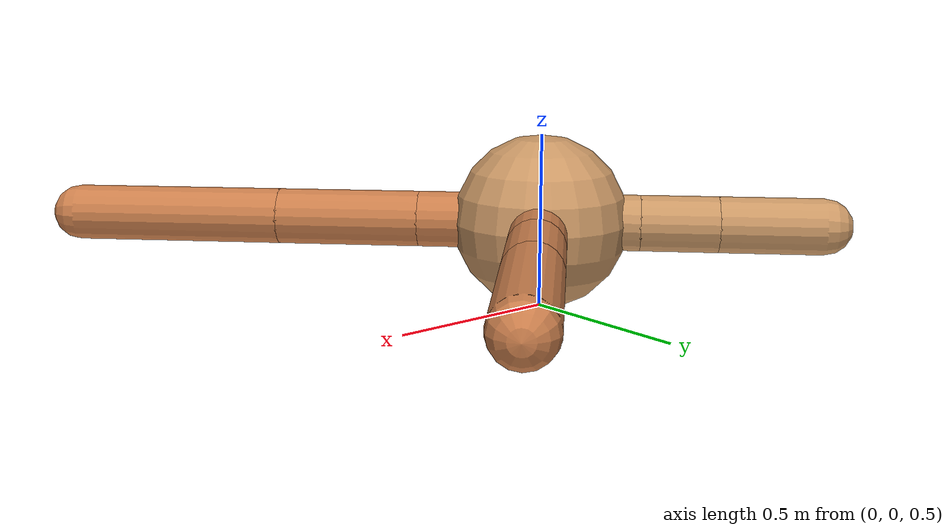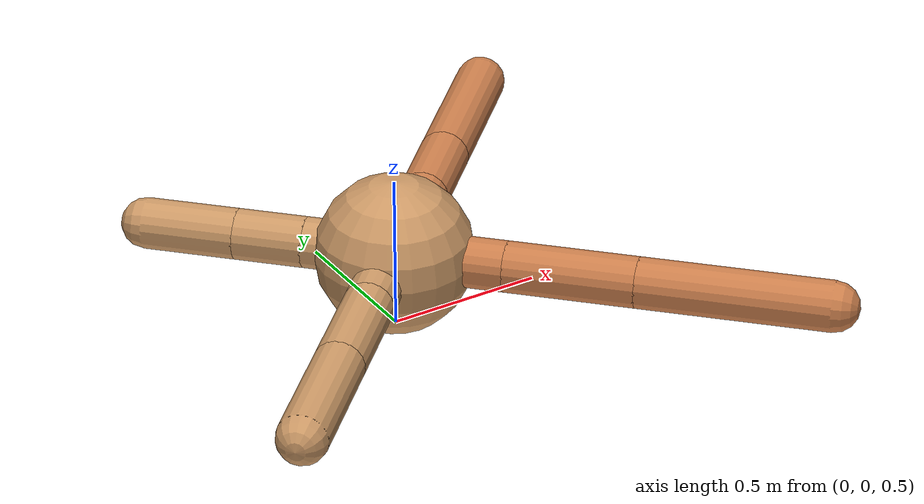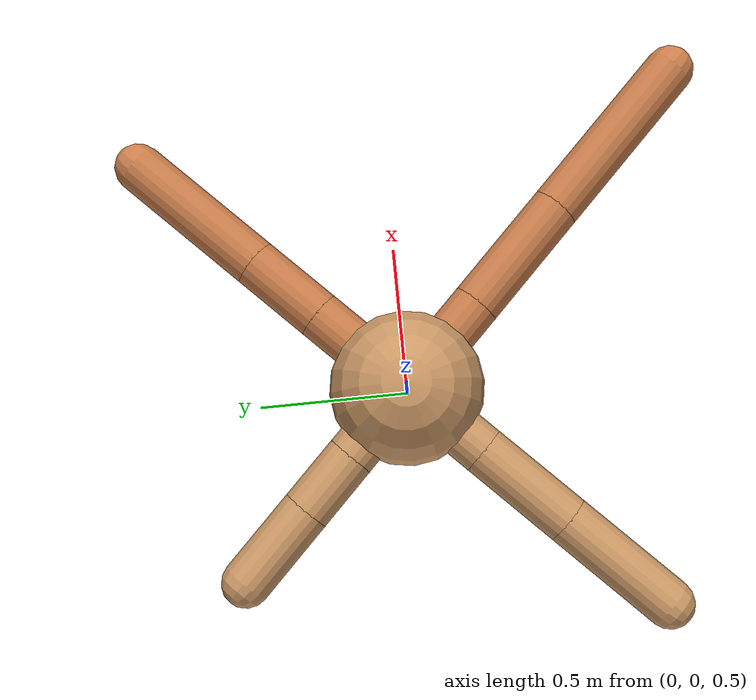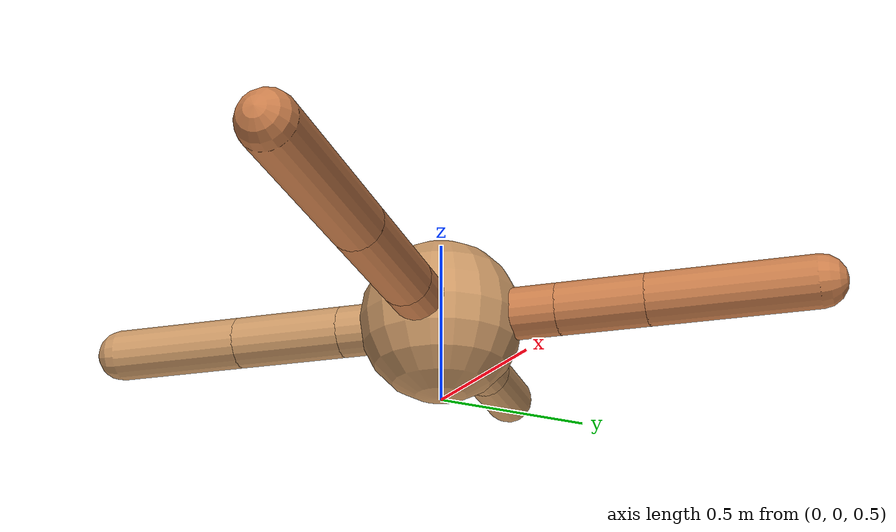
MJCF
<mujoco model="ant">
  <compiler angle="degree" coordinate="local" inertiafromgeom="true" />
  <option integrator="RK4" timestep="0.01" />
  <custom>
    <numeric data="0.0 0.0 0.55 1.0 0.0 0.0 0.0 0.0 1.0 0.0 -1.0 0.0 -1.0 0.0 1.0" name="init_qpos" />
  </custom>
  <default>
    <joint armature="1" damping="1" limited="true" />
    <geom conaffinity="0" condim="3" density="5.0" friction="1.5 0.1 0.1" margin="0.01" rgba="0.8 0.6 0.4 1" />
  </default>
  <worldbody>
    <body name="torso" pos="0 0 0.75">
      <geom name="torso_geom" pos="0 0 0" size="0.25" type="sphere" />

      <body name="front_left_leg" pos="0 0 0">
        <geom fromto="0.0 0.0 0.0 0.2603649031257807 0.2603649031257807 0.0" name="aux_1_geom" size="0.08" type="capsule" rgba=".8 .5 .3 1" />
        <body name="aux_1" pos="0.2603649031257807 0.2603649031257807 0.0">
          <joint axis="0 0 1" name="hip_1" pos="0.0 0.0 0.0" range="-40 40" type="hinge" />
          <geom fromto="0.0 0.0 0.0 0.1899709773206818 0.1899709773206818 0.0" name="left_leg_geom" size="0.08" type="capsule" rgba=".8 .5 .3 1" />
          <body pos="0.1899709773206818 0.1899709773206818 0.0" name="front_left_foot">
            <joint axis="-1 1 0" name="ankle_1" pos="0.0 0.0 0.0" range="30 100" type="hinge" />
            <geom fromto="0.0 0.0 0.0 0.35432770837898175 0.35432770837898175 0.0" name="left_ankle_geom" size="0.08" type="capsule" rgba=".8 .5 .3 1" />
          </body>
        </body>
      </body>
      <body name="front_right_leg" pos="0 0 0">
        <geom fromto="0.0 0.0 0.0 -0.2 0.2 0.0" name="aux_2_geom" size="0.08" type="capsule" />
        <body name="aux_2" pos="-0.2 0.2 0.0">
          <joint axis="0 0 1" name="hip_2" pos="0.0 0.0 0.0" range="-40 40" type="hinge" />
          <geom fromto="0.0 0.0 0.0 -0.15523483218055759 0.15523483218055759 0.0" name="right_leg_geom" size="0.08" type="capsule" />
          <body pos="-0.15523483218055759 0.15523483218055759 0.0" name="front_right_foot">
            <joint axis="1 1 0" name="ankle_2" pos="0.0 0.0 0.0" range="-100 -30" type="hinge" />
            <geom fromto="0.0 0.0 0.0 -0.2070106370292269 0.2070106370292269 0.0" name="right_ankle_geom" size="0.08" type="capsule" />
          </body>
        </body>
      </body>
      <body name="left_back_leg" pos="0 0 0">
        <geom fromto="0.0 0.0 0.0 -0.22328436691301082 -0.22328436691301082 0.0" name="aux_3_geom" size="0.08" type="capsule" />
        <body name="aux_3" pos="-0.22328436691301082 -0.22328436691301082 0.0">
          <joint axis="0 0 1" name="hip_3" pos="0.0 0.0 0.0" range="-40 40" type="hinge" />
          <geom fromto="0.0 0.0 0.0 -0.24264909407842944 -0.24264909407842944 0.0" name="back_leg_geom" size="0.08" type="capsule" />
          <body pos="-0.24264909407842944 -0.24264909407842944 0.0" name="left_back_foot">
            <joint axis="-1 1 0" name="ankle_3" pos="0.0 0.0 0.0" range="-100 -30" type="hinge" />
            <geom fromto="0.0 0.0 0.0 -0.2895483050226841 -0.2895483050226841 0.0" name="third_ankle_geom" size="0.08" type="capsule" />
          </body>
        </body>
      </body>
      <body name="right_back_leg" pos="0 0 0">
        <geom fromto="0.0 0.0 0.0 0.24829279078143252 -0.24829279078143252 0.0" name="aux_4_geom" size="0.08" type="capsule" rgba=".8 .5 .3 1" />
        <body name="aux_4" pos="0.24829279078143252 -0.24829279078143252 0.0">
          <joint axis="0 0 1" name="hip_4" pos="0.0 0.0 0.0" range="-40 40" type="hinge" />
          <geom fromto="0.0 0.0 0.0 0.29031655858616645 -0.29031655858616645 0.0" name="rightback_leg_geom" size="0.08" type="capsule" rgba=".8 .5 .3 1" />
          <body pos="0.29031655858616645 -0.29031655858616645 0.0" name="right_back_foot">
            <joint axis="1 1 0" name="ankle_4" pos="0.0 0.0 0.0" range="30 100" type="hinge" />
            <geom fromto="0.0 0.0 0.0 0.42782495899163175 -0.42782495899163175 0.0" name="fourth_ankle_geom" size="0.08" type="capsule" rgba=".8 .5 .3 1" />
          </body>
        </body>
      </body>
    </body>
  </worldbody>
  <actuator>
    <motor ctrllimited="true" ctrlrange="-1.0 1.0" joint="hip_4" gear="150" />
    <motor ctrllimited="true" ctrlrange="-1.0 1.0" joint="ankle_4" gear="150" />
    <motor ctrllimited="true" ctrlrange="-1.0 1.0" joint="hip_1" gear="150" />
    <motor ctrllimited="true" ctrlrange="-1.0 1.0" joint="ankle_1" gear="150" />
    <motor ctrllimited="true" ctrlrange="-1.0 1.0" joint="hip_2" gear="150" />
    <motor ctrllimited="true" ctrlrange="-1.0 1.0" joint="ankle_2" gear="150" />
    <motor ctrllimited="true" ctrlrange="-1.0 1.0" joint="hip_3" gear="150" />
    <motor ctrllimited="true" ctrlrange="-1.0 1.0" joint="ankle_3" gear="150" />
  </actuator>
</mujoco>
